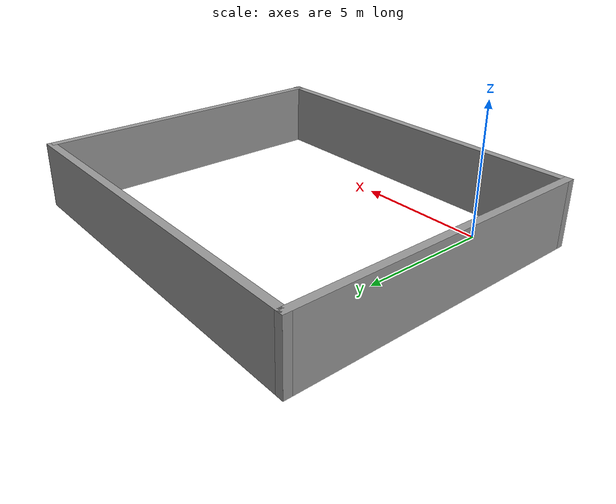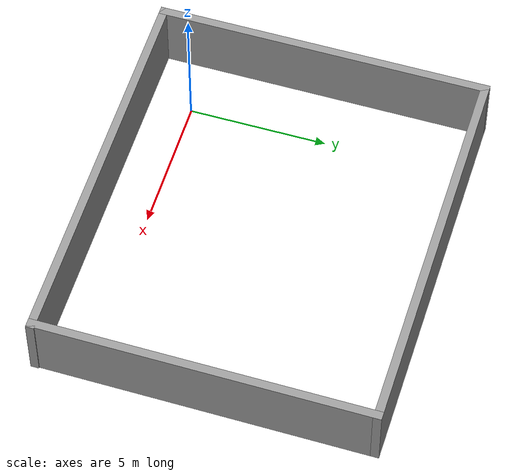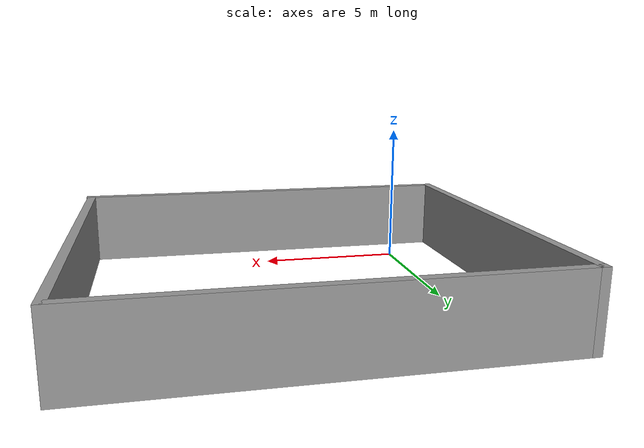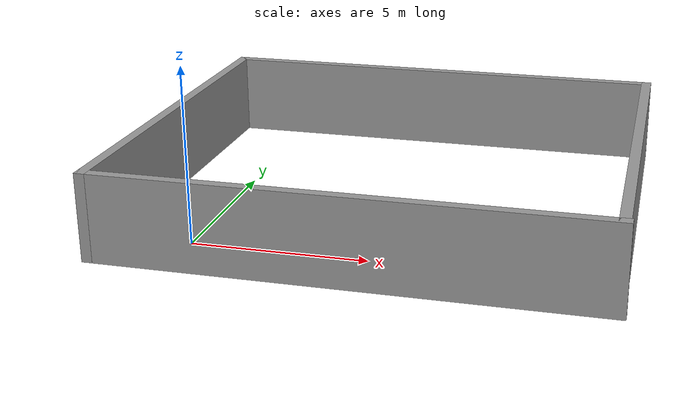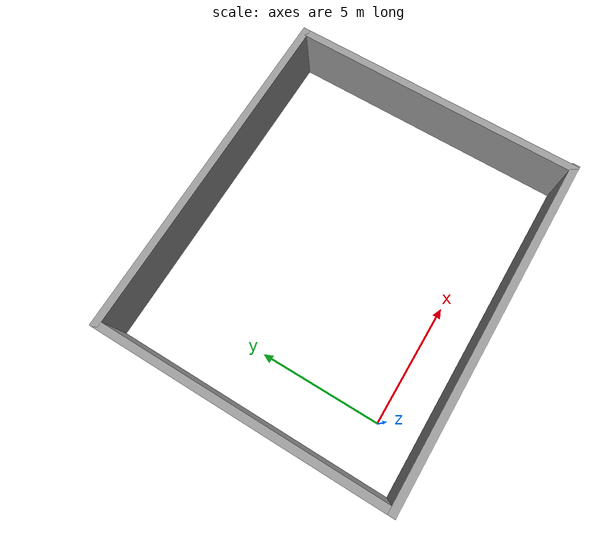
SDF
<?xml version='1.0'?>
<sdf version='1.7'>
  <model name='smallroom'>
    <pose>4.74398 4.237 0 0 -0 0</pose>
    <link name='Wall_0'>
      <collision name='Wall_0_Collision'>
        <geometry>
          <box>
            <size>12.1503 0.3 2.5</size>
          </box>
        </geometry>
        <pose>0 0 1.25 0 -0 0</pose>
      </collision>
      <visual name='Wall_0_Visual'>
        <pose>0 0 1.25 0 -0 0</pose>
        <geometry>
          <box>
            <size>12.1503 0.3 2.5</size>
          </box>
        </geometry>
        <material>
          <script>
            <uri>file://media/materials/scripts/gazebo.material</uri>
            <name>Gazebo/Grey</name>
          </script>
          <ambient>1 1 1 1</ambient>
        </material>
        <meta>
          <layer>0</layer>
        </meta>
      </visual>
      <pose>-6.92498 0 0 0 -0 1.5708</pose>
    </link>
    <link name='Wall_2'>
      <collision name='Wall_2_Collision'>
        <geometry>
          <box>
            <size>14.1501 0.3 2.5</size>
          </box>
        </geometry>
        <pose>0 0 1.25 0 -0 0</pose>
      </collision>
      <visual name='Wall_2_Visual'>
        <pose>0 0 1.25 0 -0 0</pose>
        <geometry>
          <box>
            <size>14.1501 0.3 2.5</size>
          </box>
        </geometry>
        <material>
          <script>
            <uri>file://media/materials/scripts/gazebo.material</uri>
            <name>Gazebo/Grey</name>
          </script>
          <ambient>1 1 1 1</ambient>
        </material>
        <meta>
          <layer>0</layer>
        </meta>
      </visual>
      <pose>1.8e-05 -5.925 0 0 -0 0</pose>
    </link>
    <link name='Wall_4'>
      <collision name='Wall_4_Collision'>
        <geometry>
          <box>
            <size>14.1112 0.3 2.5</size>
          </box>
        </geometry>
        <pose>0 0 1.25 0 -0 0</pose>
      </collision>
      <visual name='Wall_4_Visual'>
        <pose>0 0 1.25 0 -0 0</pose>
        <geometry>
          <box>
            <size>14.1112 0.3 2.5</size>
          </box>
        </geometry>
        <material>
          <script>
            <uri>file://media/materials/scripts/gazebo.material</uri>
            <name>Gazebo/Grey</name>
          </script>
          <ambient>1 1 1 1</ambient>
        </material>
        <meta>
          <layer>0</layer>
        </meta>
      </visual>
      <pose>-0.019482 5.925 0 0 -0 0</pose>
    </link>
    <link name='Wall_5'>
      <collision name='Wall_5_Collision'>
        <geometry>
          <box>
            <size>12.1497 0.3 2.5</size>
          </box>
        </geometry>
        <pose>0 0 1.25 0 -0 0</pose>
      </collision>
      <visual name='Wall_5_Visual'>
        <pose>0 0 1.25 0 -0 0</pose>
        <geometry>
          <box>
            <size>12.1497 0.3 2.5</size>
          </box>
        </geometry>
        <material>
          <script>
            <uri>file://media/materials/scripts/gazebo.material</uri>
            <name>Gazebo/Grey</name>
          </script>
          <ambient>1 1 1 1</ambient>
        </material>
        <meta>
          <layer>0</layer>
        </meta>
      </visual>
      <pose>6.88602 0 0 0 -0 -1.5708</pose>
    </link>
    <static>1</static>
  </model>
</sdf>
